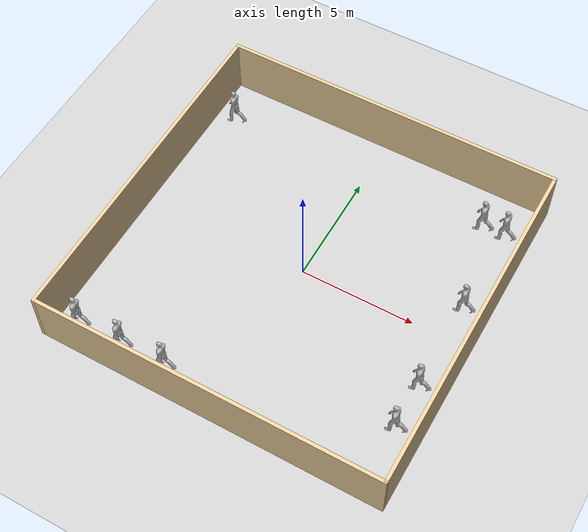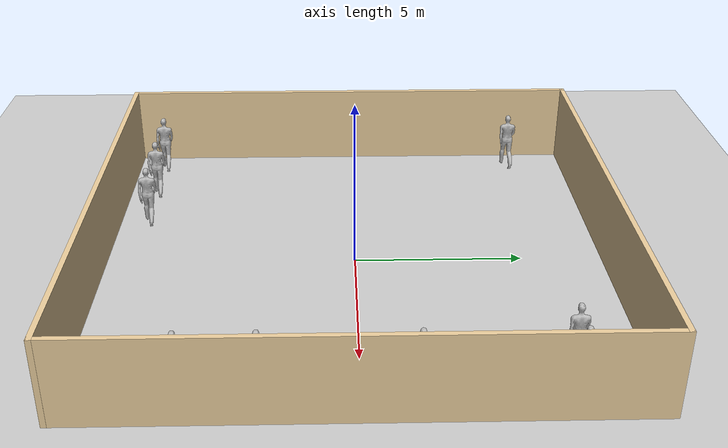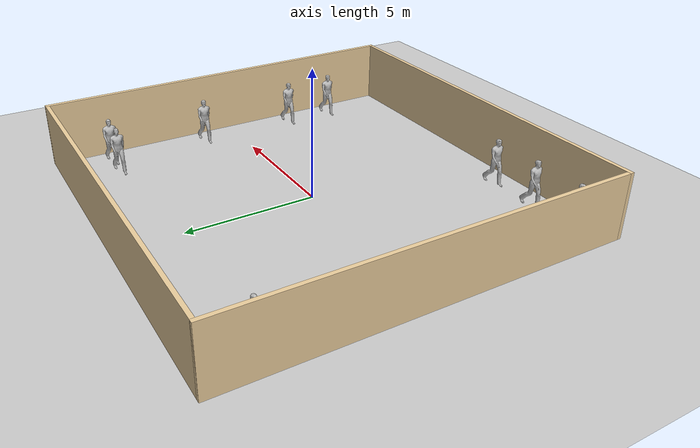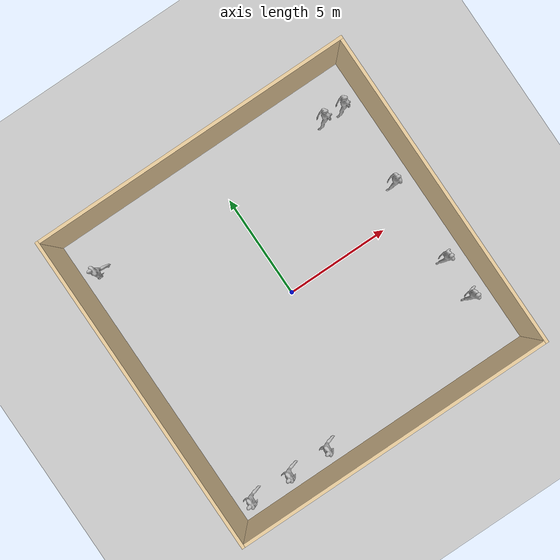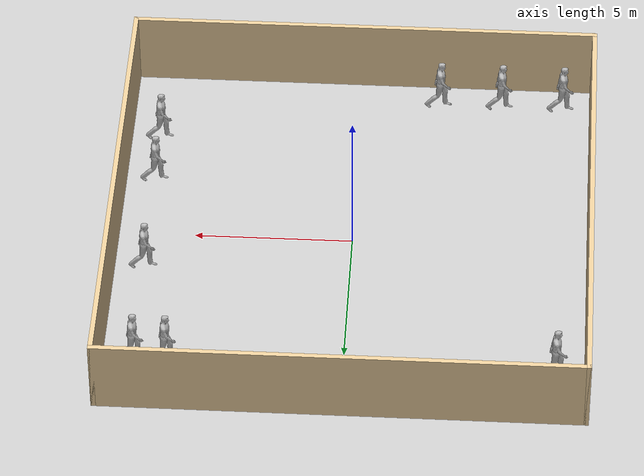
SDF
<sdf version="1.6">
 <world name="default">
  <light name="sun" type="directional">
   <pose>0 0 10 0 -0 0</pose>
   <diffuse>0.8 0.8 0.8 1</diffuse>
   <specular>0.2 0.2 0.2 1</specular>
   <attenuation>
    <range>1000</range>
    <constant>0.9</constant>
    <linear>0.01</linear>
    <quadratic>0.001</quadratic>
   </attenuation>
   <direction>-0.5 0.1 -0.9</direction>
  </light>
  <model name="ground_plane">
   <static>1</static>
   <link name="link">
    <collision name="collision">
     <geometry><plane><normal>0 0 1</normal><size>100 100</size></plane></geometry>
     <surface><friction><ode><mu>100</mu><mu2>50</mu2></ode></friction></surface>
    </collision>
    <visual name="visual">
     <cast_shadows>0</cast_shadows>
     <geometry><plane><normal>0 0 1</normal><size>100 100</size></plane></geometry>
     <material>
      <script><uri>file://media/materials/scripts/gazebo.material</uri><name>Gazebo/Grey</name></script>
     </material>
    </visual>
   </link>
  </model>
  <include>
   <name>person_walking1</name>
   <pose>-6.5 -6.5 0.02 0 -0 4.71</pose>
   <uri>model://person_walking_fixed</uri>
  </include>
  <include>
   <name>person_walking2</name>
   <pose>-4.5 -6.5 0.02 0 -0 4.71</pose>
   <uri>model://person_walking_fixed</uri>
  </include>
  <include>
   <name>person_walking3</name>
   <pose>-2.5 -6.5 0.02 0 -0 4.71</pose>
   <uri>model://person_walking_fixed</uri>
  </include>
  <include>
   <name>person_walking4</name>
   <pose>-2.5 -6.5 0.02 0 -0 4.71</pose>
   <uri>model://person_walking_fixed</uri>
  </include>
  <include>
   <name>person_walking5</name>
   <pose>-2.5 -6.5 0.02 0 -0 4.71</pose>
   <uri>model://person_walking_fixed</uri>
  </include>
  <include>
   <name>person_walking8</name>
   <pose>6.5 -4.5 0.02 0 -0 4.71</pose>
   <uri>model://person_walking_fixed</uri>
  </include>
  <include>
   <name>person_walking9</name>
   <pose>6.5 -2.5 0.02 0 -0 4.71</pose>
   <uri>model://person_walking_fixed</uri>
  </include>
  <include>
   <name>person_walking10</name>
   <pose>6.5 1.5 0.02 0 -0 4.71</pose>
   <uri>model://person_walking_fixed</uri>
  </include>
  <include>
   <name>person_walking11</name>
   <pose>6.5 5.5 0.02 0 -0 4.71</pose>
   <uri>model://person_walking_fixed</uri>
  </include>
  <include>
   <name>person_walking12</name>
   <pose>6.5 5.5 0.02 0 -0 4.71</pose>
   <uri>model://person_walking_fixed</uri>
  </include>
  <include>
   <name>person_walking13</name>
   <pose>6.5 5.5 0.02 0 -0 4.71</pose>
   <uri>model://person_walking_fixed</uri>
  </include>
  <include>
   <name>person_walking14</name>
   <pose>-6.5 5.5 0.02 0 -0 4.71</pose>
   <uri>model://person_walking_fixed</uri>
  </include>
  <include>
   <name>person_walking15</name>
   <pose>5.5 5.5 0.02 0 -0 4.71</pose>
   <uri>model://person_walking_fixed</uri>
  </include>
  <include>
   <name>person_walking16</name>
   <pose>5.5 5.5 0.02 0 -0 4.71</pose>
   <uri>model://person_walking_fixed</uri>
  </include>
  <include>
   <name>person_walking17</name>
   <pose>5.5 5.5 0.02 0 -0 4.71</pose>
   <uri>model://person_walking_fixed</uri>
  </include>
  <include>
   <name>person_walking18</name>
   <pose>5.5 5.5 0.02 0 -0 4.71</pose>
   <uri>model://person_walking_fixed</uri>
  </include>
  <include>
   <name>person_walking19</name>
   <pose>5.5 5.5 0.02 0 -0 4.71</pose>
   <uri>model://person_walking_fixed</uri>
  </include>
  <include>
   <name>person_walking20</name>
   <pose>5.5 5.5 0.02 0 -0 4.71</pose>
   <uri>model://person_walking_fixed</uri>
  </include>
  <include>
   <name>person_walking21</name>
   <pose>5.5 5.5 0.02 0 -0 4.71</pose>
   <uri>model://person_walking_fixed</uri>
  </include>
  <include>
   <name>person_walking22</name>
   <pose>5.5 5.5 0.02 0 -0 4.71</pose>
   <uri>model://person_walking_fixed</uri>
  </include>
  <include>
   <name>person_walking23</name>
   <pose>5.5 5.5 0.02 0 -0 4.71</pose>
   <uri>model://person_walking_fixed</uri>
  </include>
  <include>
   <name>person_walking24</name>
   <pose>5.5 5.5 0.02 0 -0 4.71</pose>
   <uri>model://person_walking_fixed</uri>
  </include>
  <gravity>0 0 -9.8</gravity>
  <magnetic_field>6e-06 2.3e-05 -4.2e-05</magnetic_field>
  <atmosphere type="adiabatic"/>
  <physics name="default_physics" default="0" type="ode">
   <max_step_size>0.001</max_step_size>
   <real_time_factor>1</real_time_factor>
   <real_time_update_rate>1000</real_time_update_rate>
  </physics>
  <scene><ambient>0.4 0.4 0.4 1</ambient><background>0.7 0.7 0.7 1</background><shadows>1</shadows></scene>
  <audio><device>default</device></audio>
  <spherical_coordinates>
   <surface_model>EARTH_WGS84</surface_model>
   <latitude_deg>0</latitude_deg>
   <longitude_deg>0</longitude_deg>
   <elevation>0</elevation>
   <heading_deg>0</heading_deg>
  </spherical_coordinates>
  <model name="quadratic_flow">
   <link name="Wall_0">
    <collision name="Wall_0_Collision">
     <geometry><box><size>15.15 0.15 2.5</size></box></geometry>
     <pose>0 0 1.25 0 -0 0</pose>
    </collision>
    <visual name="Wall_0_Visual">
     <pose>0 0 1.25 0 -0 0</pose>
     <geometry><box><size>15.15 0.15 2.5</size></box></geometry>
     <material>
      <script><uri>file://media/materials/scripts/gazebo.material</uri><name>Gazebo/Grey</name></script>
      <ambient>0.921569 0.807843 0.615686 1</ambient>
     </material>
     <meta><layer>0</layer></meta>
    </visual>
    <pose>-7.5 0 0 0 -0 1.5708</pose>
   </link>
   <link name="Wall_1">
    <collision name="Wall_1_Collision">
     <geometry><box><size>15.15 0.15 2.5</size></box></geometry>
     <pose>0 0 1.25 0 -0 0</pose>
    </collision>
    <visual name="Wall_1_Visual">
     <pose>0 0 1.25 0 -0 0</pose>
     <geometry><box><size>15.15 0.15 2.5</size></box></geometry>
     <material>
      <script><uri>file://media/materials/scripts/gazebo.material</uri><name>Gazebo/Grey</name></script>
      <ambient>0.921569 0.807843 0.615686 1</ambient>
     </material>
     <meta><layer>0</layer></meta>
    </visual>
    <pose>0 7.5 0 0 -0 0</pose>
   </link>
   <link name="Wall_2">
    <collision name="Wall_2_Collision">
     <geometry><box><size>15.15 0.15 2.5</size></box></geometry>
     <pose>0 0 1.25 0 -0 0</pose>
    </collision>
    <visual name="Wall_2_Visual">
     <pose>0 0 1.25 0 -0 0</pose>
     <geometry><box><size>15.15 0.15 2.5</size></box></geometry>
     <material>
      <script><uri>file://media/materials/scripts/gazebo.material</uri><name>Gazebo/Grey</name></script>
      <ambient>0.921569 0.807843 0.615686 1</ambient>
     </material>
     <meta><layer>0</layer></meta>
    </visual>
    <pose>7.5 0 0 0 -0 -1.5708</pose>
   </link>
   <link name="Wall_3">
    <collision name="Wall_3_Collision">
     <geometry><box><size>15.15 0.15 2.5</size></box></geometry>
     <pose>0 0 1.25 0 -0 0</pose>
    </collision>
    <visual name="Wall_3_Visual">
     <pose>0 0 1.25 0 -0 0</pose>
     <geometry><box><size>15.15 0.15 2.5</size></box></geometry>
     <material>
      <script><uri>file://media/materials/scripts/gazebo.material</uri><name>Gazebo/Grey</name></script>
      <ambient>0.921569 0.807843 0.615686 1</ambient>
     </material>
     <meta><layer>0</layer></meta>
    </visual>
    <pose>0 -7.5 0 0 -0 3.14159</pose>
   </link>
   <static>1</static>
  </model>
 </world>
</sdf>

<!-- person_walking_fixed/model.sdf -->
<sdf version="1.5">
  <model name="person_walking">
    <link name="link">
      <inertial>
        <pose>0 0 0.95 0 0 0</pose>
        <mass>80.0</mass>
        <inertia>
          <ixx>27.82</ixx>
          <ixy>0</ixy>
          <ixz>0</ixz>
          <iyy>24.88</iyy>
          <iyz>0</iyz>
          <izz>4.57</izz>
        </inertia>
      </inertial>

      <visual name="visual">
        <pose>0 0 -0.02 0 0 0</pose>
        <geometry>
          <mesh>
            <uri>model://person_walking/meshes/walking.dae</uri>
          </mesh>
        </geometry>
      </visual>
      <self_collide>0</self_collide>
      <kinematic>0</kinematic>
      <gravity>0</gravity>
    </link>
  </model>
</sdf>
